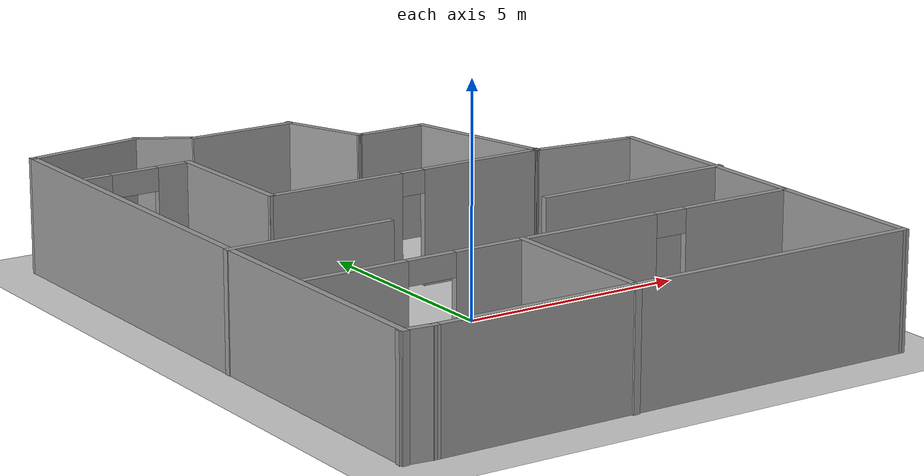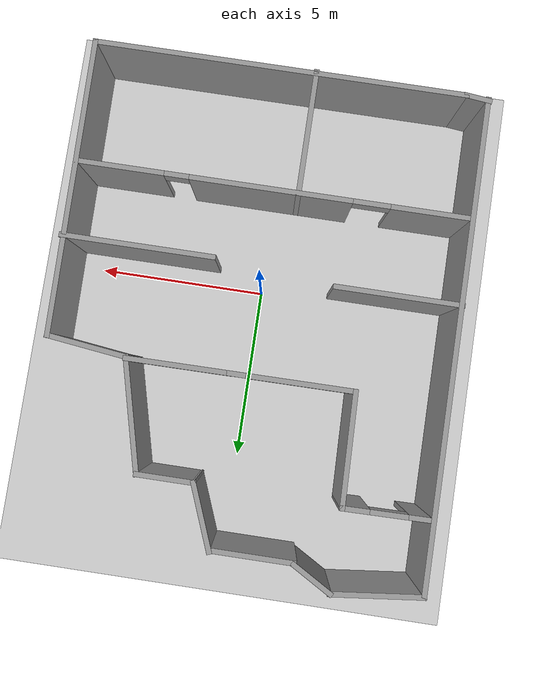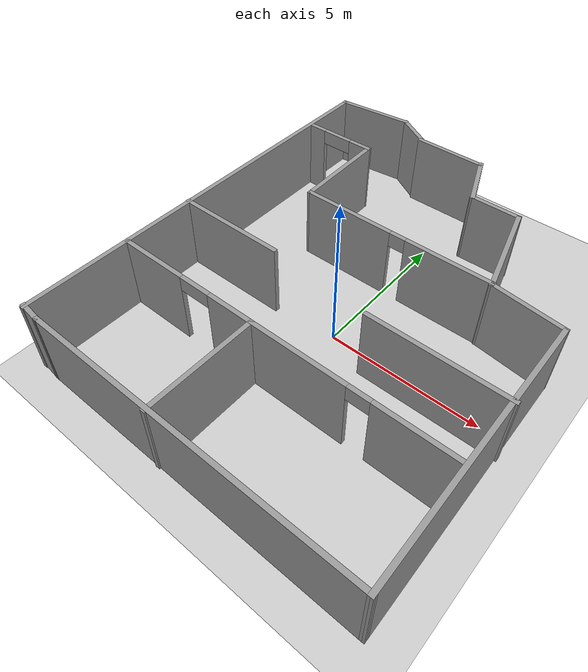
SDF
<sdf version="1.6">
 <world name="default">
  <light name="sun" type="directional">
   <pose>0 0 10 0 -0 0</pose>
   <diffuse>0.8 0.8 0.8 1</diffuse>
   <specular>0.2 0.2 0.2 1</specular>
   <attenuation>
    <range>1000</range>
    <constant>0.9</constant>
    <linear>0.01</linear>
    <quadratic>0.001</quadratic>
   </attenuation>
   <direction>-0.5 0.1 -0.9</direction>
  </light>
  <model name="ground_plane">
   <static>1</static>
   <link name="link">
    <collision name="collision">
     <geometry><plane><normal>0 0 1</normal><size>100 100</size></plane></geometry>
     <surface>
      <contact><collide_bitmask>65535</collide_bitmask></contact>
      <friction><ode><mu>100</mu><mu2>50</mu2></ode></friction>
     </surface>
    </collision>
    <visual name="visual">
     <cast_shadows>0</cast_shadows>
     <geometry><plane><normal>0 0 1</normal><size>100 100</size></plane></geometry>
     <material>
      <script><uri>file://media/materials/scripts/gazebo.material</uri><name>Gazebo/Grey</name></script>
     </material>
    </visual>
   </link>
  </model>
  <gravity>0 0 -9.8</gravity>
  <magnetic_field>6e-06 2.3e-05 -4.2e-05</magnetic_field>
  <atmosphere type="adiabatic"/>
  <physics name="default_physics" default="0" type="ode">
   <max_step_size>0.001</max_step_size>
   <real_time_factor>1</real_time_factor>
   <real_time_update_rate>1000</real_time_update_rate>
  </physics>
  <scene><ambient>0.4 0.4 0.4 1</ambient><background>0.7 0.7 0.7 1</background><shadows>1</shadows></scene>
  <spherical_coordinates>
   <surface_model>EARTH_WGS84</surface_model>
   <latitude_deg>0</latitude_deg>
   <longitude_deg>0</longitude_deg>
   <elevation>0</elevation>
   <heading_deg>0</heading_deg>
  </spherical_coordinates>
  <model name="1world">
   <pose>0.023806 0.914911 0 0 -0 0</pose>
   <link name="Wall_22">
    <pose>0.144752 1.70123 0 0 -0 0.004067</pose>
    <visual name="Wall_22_Visual_0">
     <pose>-1.74012 0 1.25 0 -0 0</pose>
     <geometry><box><size>3.17376 0.15 2.5</size></box></geometry>
     <material>
      <script><uri>file://media/materials/scripts/gazebo.material</uri><name>Gazebo/Grey</name></script>
      <ambient>1 1 1 1</ambient>
     </material>
     <meta><layer>0</layer></meta>
    </visual>
    <collision name="Wall_22_Collision_0">
     <geometry><box><size>3.17376 0.15 2.5</size></box></geometry>
     <pose>-1.74012 0 1.25 0 -0 0</pose>
    </collision>
    <visual name="Wall_22_Visual_1">
     <pose>1.85688 0 1.25 0 -0 0</pose>
     <geometry><box><size>2.94023 0.15 2.5</size></box></geometry>
     <material>
      <script><uri>file://media/materials/scripts/gazebo.material</uri><name>Gazebo/Grey</name></script>
      <ambient>1 1 1 1</ambient>
     </material>
     <meta><layer>0</layer></meta>
    </visual>
    <collision name="Wall_22_Collision_1">
     <geometry><box><size>2.94023 0.15 2.5</size></box></geometry>
     <pose>1.85688 0 1.25 0 -0 0</pose>
    </collision>
    <visual name="Wall_22_Visual_2">
     <pose>0.116765 0 2.25 0 -0 0</pose>
     <geometry><box><size>0.54 0.15 0.5</size></box></geometry>
     <material>
      <script><uri>file://media/materials/scripts/gazebo.material</uri><name>Gazebo/Grey</name></script>
      <ambient>1 1 1 1</ambient>
     </material>
     <meta><layer>0</layer></meta>
    </visual>
    <collision name="Wall_22_Collision_2">
     <geometry><box><size>0.54 0.15 0.5</size></box></geometry>
     <pose>0.116765 0 2.25 0 -0 0</pose>
    </collision>
   </link>
   <link name="Wall_26">
    <collision name="Wall_26_Collision">
     <geometry><box><size>3.40414 0.15 2.5</size></box></geometry>
     <pose>0 0 1.25 0 -0 0</pose>
    </collision>
    <visual name="Wall_26_Visual">
     <pose>0 0 1.25 0 -0 0</pose>
     <geometry><box><size>3.40414 0.15 2.5</size></box></geometry>
     <material>
      <script><uri>file://media/materials/scripts/gazebo.material</uri><name>Gazebo/Grey</name></script>
      <ambient>1 1 1 1</ambient>
     </material>
     <meta><layer>0</layer></meta>
    </visual>
    <pose>2.98717 3.25396 0 0 -0 1.82525</pose>
   </link>
   <link name="Wall_30">
    <collision name="Wall_30_Collision">
     <geometry><box><size>11 0.15 2.5</size></box></geometry>
     <pose>0 0 1.25 0 -0 0</pose>
    </collision>
    <visual name="Wall_30_Visual">
     <pose>0 0 1.25 0 -0 0</pose>
     <geometry><box><size>11 0.15 2.5</size></box></geometry>
     <material>
      <script><uri>file://media/materials/scripts/gazebo.material</uri><name>Gazebo/Grey</name></script>
      <ambient>1 1 1 1</ambient>
     </material>
     <meta><layer>0</layer></meta>
    </visual>
    <pose>0.338502 -7.20601 0 0 -0 3.14159</pose>
   </link>
   <link name="Wall_31">
    <collision name="Wall_31_Collision">
     <geometry><box><size>0.82404 0.15 2.5</size></box></geometry>
     <pose>0 0 1.25 0 -0 0</pose>
    </collision>
    <visual name="Wall_31_Visual">
     <pose>0 0 1.25 0 -0 0</pose>
     <geometry><box><size>0.82404 0.15 2.5</size></box></geometry>
     <material>
      <script><uri>file://media/materials/scripts/gazebo.material</uri><name>Gazebo/Grey</name></script>
      <ambient>1 1 1 1</ambient>
     </material>
     <meta><layer>0</layer></meta>
    </visual>
    <pose>-5.42168 -7.17084 0 0 -0 3.03702</pose>
   </link>
   <link name="Wall_32">
    <collision name="Wall_32_Collision">
     <geometry><box><size>14.25 0.15 2.5</size></box></geometry>
     <pose>0 0 1.25 0 -0 0</pose>
    </collision>
    <visual name="Wall_32_Visual">
     <pose>0 0 1.25 0 -0 0</pose>
     <geometry><box><size>14.25 0.15 2.5</size></box></geometry>
     <material>
      <script><uri>file://media/materials/scripts/gazebo.material</uri><name>Gazebo/Grey</name></script>
      <ambient>1 1 1 1</ambient>
     </material>
     <meta><layer>0</layer></meta>
    </visual>
    <pose>-5.72168 -0.120835 0 0 -0 1.5708</pose>
   </link>
   <link name="Wall_35">
    <pose>0.010281 -3.64927 0 0 -0 0</pose>
    <visual name="Wall_35_Visual_0">
     <pose>-4.56273 0 1.25 0 -0 0</pose>
     <geometry><box><size>2.37454 0.15 2.5</size></box></geometry>
     <material>
      <script><uri>file://media/materials/scripts/gazebo.material</uri><name>Gazebo/Grey</name></script>
      <ambient>1 1 1 1</ambient>
     </material>
     <meta><layer>0</layer></meta>
    </visual>
    <collision name="Wall_35_Collision_0">
     <geometry><box><size>2.37454 0.15 2.5</size></box></geometry>
     <pose>-4.56273 0 1.25 0 -0 0</pose>
    </collision>
    <visual name="Wall_35_Visual_1">
     <pose>0.074158 0 1.25 0 -0 0</pose>
     <geometry><box><size>4.73924 0.15 2.5</size></box></geometry>
     <material>
      <script><uri>file://media/materials/scripts/gazebo.material</uri><name>Gazebo/Grey</name></script>
      <ambient>1 1 1 1</ambient>
     </material>
     <meta><layer>0</layer></meta>
    </visual>
    <collision name="Wall_35_Collision_1">
     <geometry><box><size>4.73924 0.15 2.5</size></box></geometry>
     <pose>0.074158 0 1.25 0 -0 0</pose>
    </collision>
    <visual name="Wall_35_Visual_2">
     <pose>4.45689 0 1.25 0 -0 0</pose>
     <geometry><box><size>2.58622 0.15 2.5</size></box></geometry>
     <material>
      <script><uri>file://media/materials/scripts/gazebo.material</uri><name>Gazebo/Grey</name></script>
      <ambient>1 1 1 1</ambient>
     </material>
     <meta><layer>0</layer></meta>
    </visual>
    <collision name="Wall_35_Collision_2">
     <geometry><box><size>2.58622 0.15 2.5</size></box></geometry>
     <pose>4.45689 0 1.25 0 -0 0</pose>
    </collision>
    <visual name="Wall_35_Visual_3">
     <pose>-2.83546 0 2.25 0 -0 0</pose>
     <geometry><box><size>1.08 0.15 0.5</size></box></geometry>
     <material>
      <script><uri>file://media/materials/scripts/gazebo.material</uri><name>Gazebo/Grey</name></script>
      <ambient>1 1 1 1</ambient>
     </material>
     <meta><layer>0</layer></meta>
    </visual>
    <collision name="Wall_35_Collision_3">
     <geometry><box><size>1.08 0.15 0.5</size></box></geometry>
     <pose>-2.83546 0 2.25 0 -0 0</pose>
    </collision>
    <visual name="Wall_35_Visual_4">
     <pose>2.80378 0 2.25 0 -0 0</pose>
     <geometry><box><size>0.72 0.15 0.5</size></box></geometry>
     <material>
      <script><uri>file://media/materials/scripts/gazebo.material</uri><name>Gazebo/Grey</name></script>
      <ambient>1 1 1 1</ambient>
     </material>
     <meta><layer>0</layer></meta>
    </visual>
    <collision name="Wall_35_Collision_4">
     <geometry><box><size>0.72 0.15 0.5</size></box></geometry>
     <pose>2.80378 0 2.25 0 -0 0</pose>
    </collision>
   </link>
   <link name="Wall_37">
    <collision name="Wall_37_Collision">
     <geometry><box><size>3.75 0.15 2.5</size></box></geometry>
     <pose>0 0 1.25 0 -0 0</pose>
    </collision>
    <visual name="Wall_37_Visual">
     <pose>0 0 1.25 0 -0 0</pose>
     <geometry><box><size>3.75 0.15 2.5</size></box></geometry>
     <material>
      <script><uri>file://media/materials/scripts/gazebo.material</uri><name>Gazebo/Grey</name></script>
      <ambient>1 1 1 1</ambient>
     </material>
     <meta><layer>0</layer></meta>
    </visual>
    <pose>-0.710659 -5.4488 0 0 -0 -1.5708</pose>
   </link>
   <link name="Wall_39">
    <collision name="Wall_39_Collision">
     <geometry><box><size>3.75 0.15 2.5</size></box></geometry>
     <pose>0 0 1.25 0 -0 0</pose>
    </collision>
    <visual name="Wall_39_Visual">
     <pose>0 0 1.25 0 -0 0</pose>
     <geometry><box><size>3.75 0.15 2.5</size></box></geometry>
     <material>
      <script><uri>file://media/materials/scripts/gazebo.material</uri><name>Gazebo/Grey</name></script>
      <ambient>1 1 1 1</ambient>
     </material>
     <meta><layer>0</layer></meta>
    </visual>
    <pose>-3.94122 -1.15111 0 0 -0 0</pose>
   </link>
   <link name="Wall_41">
    <collision name="Wall_41_Collision">
     <geometry><box><size>4.5 0.15 2.5</size></box></geometry>
     <pose>0 0 1.25 0 -0 0</pose>
    </collision>
    <visual name="Wall_41_Visual">
     <pose>0 0 1.25 0 -0 0</pose>
     <geometry><box><size>4.5 0.15 2.5</size></box></geometry>
     <material>
      <script><uri>file://media/materials/scripts/gazebo.material</uri><name>Gazebo/Grey</name></script>
      <ambient>1 1 1 1</ambient>
     </material>
     <meta><layer>0</layer></meta>
    </visual>
    <pose>3.58723 -1.46772 0 0 -0 3.14159</pose>
   </link>
   <link name="Wall_47">
    <collision name="Wall_47_Collision">
     <geometry><box><size>1.40684 0.15 2.5</size></box></geometry>
     <pose>0 0 1.25 0 -0 0</pose>
    </collision>
    <visual name="Wall_47_Visual">
     <pose>0 0 1.25 0 -0 0</pose>
     <geometry><box><size>1.40684 0.15 2.5</size></box></geometry>
     <material>
      <script><uri>file://media/materials/scripts/gazebo.material</uri><name>Gazebo/Grey</name></script>
      <ambient>1 1 1 1</ambient>
     </material>
     <meta><layer>0</layer></meta>
    </visual>
    <pose>-2.6279 6.90904 0 0 -0 -0.520274</pose>
   </link>
   <link name="Wall_48">
    <collision name="Wall_48_Collision">
     <geometry><box><size>2.5 0.15 2.5</size></box></geometry>
     <pose>0 0 1.25 0 -0 0</pose>
    </collision>
    <visual name="Wall_48_Visual">
     <pose>0 0 1.25 0 -0 0</pose>
     <geometry><box><size>2.5 0.15 2.5</size></box></geometry>
     <material>
      <script><uri>file://media/materials/scripts/gazebo.material</uri><name>Gazebo/Grey</name></script>
      <ambient>1 1 1 1</ambient>
     </material>
     <meta><layer>0</layer></meta>
    </visual>
    <pose>-0.907631 6.56146 0 0 -0 0</pose>
   </link>
   <link name="Wall_57">
    <collision name="Wall_57_Collision">
     <geometry><box><size>1.75 0.15 2.5</size></box></geometry>
     <pose>0 0 1.25 0 -0 0</pose>
    </collision>
    <visual name="Wall_57_Visual">
     <pose>0 0 1.25 0 -0 0</pose>
     <geometry><box><size>1.75 0.15 2.5</size></box></geometry>
     <material>
      <script><uri>file://media/materials/scripts/gazebo.material</uri><name>Gazebo/Grey</name></script>
      <ambient>1 1 1 1</ambient>
     </material>
     <meta><layer>0</layer></meta>
    </visual>
    <pose>1.77761 4.82864 0 0 -0 3.14159</pose>
   </link>
   <link name="Wall_59">
    <pose>-4.40909 4.88141 0 0 -0 0.014325</pose>
    <visual name="Wall_59_Visual_0">
     <pose>-0.959239 0 1.25 0 -0 0</pose>
     <geometry><box><size>0.687311 0.15 2.5</size></box></geometry>
     <material>
      <script><uri>file://media/materials/scripts/gazebo.material</uri><name>Gazebo/Grey</name></script>
      <ambient>1 1 1 1</ambient>
     </material>
     <meta><layer>0</layer></meta>
    </visual>
    <collision name="Wall_59_Collision_0">
     <geometry><box><size>0.687311 0.15 2.5</size></box></geometry>
     <pose>-0.959239 0 1.25 0 -0 0</pose>
    </collision>
    <visual name="Wall_59_Visual_1">
     <pose>0.883655 0 1.25 0 -0 0</pose>
     <geometry><box><size>0.838478 0.15 2.5</size></box></geometry>
     <material>
      <script><uri>file://media/materials/scripts/gazebo.material</uri><name>Gazebo/Grey</name></script>
      <ambient>1 1 1 1</ambient>
     </material>
     <meta><layer>0</layer></meta>
    </visual>
    <collision name="Wall_59_Collision_1">
     <geometry><box><size>0.838478 0.15 2.5</size></box></geometry>
     <pose>0.883655 0 1.25 0 -0 0</pose>
    </collision>
    <visual name="Wall_59_Visual_2">
     <pose>-0.075584 0 2.25 0 -0 0</pose>
     <geometry><box><size>1.08 0.15 0.5</size></box></geometry>
     <material>
      <script><uri>file://media/materials/scripts/gazebo.material</uri><name>Gazebo/Grey</name></script>
      <ambient>1 1 1 1</ambient>
     </material>
     <meta><layer>0</layer></meta>
    </visual>
    <collision name="Wall_59_Collision_2">
     <geometry><box><size>1.08 0.15 0.5</size></box></geometry>
     <pose>-0.075584 0 2.25 0 -0 0</pose>
    </collision>
   </link>
   <link name="Wall_61">
    <collision name="Wall_61_Collision">
     <geometry><box><size>2.44393 0.15 2.5</size></box></geometry>
     <pose>0 0 1.25 0 -0 0</pose>
    </collision>
    <visual name="Wall_61_Visual">
     <pose>0 0 1.25 0 -0 0</pose>
     <geometry><box><size>2.44393 0.15 2.5</size></box></geometry>
     <material>
      <script><uri>file://media/materials/scripts/gazebo.material</uri><name>Gazebo/Grey</name></script>
      <ambient>1 1 1 1</ambient>
     </material>
     <meta><layer>0</layer></meta>
    </visual>
    <pose>4.53555 1.54293 0 0 -0 -0.119161</pose>
   </link>
   <link name="Wall_63">
    <collision name="Wall_63_Collision">
     <geometry><box><size>8.76305 0.15 2.5</size></box></geometry>
     <pose>0 0 1.25 0 -0 0</pose>
    </collision>
    <visual name="Wall_63_Visual">
     <pose>0 0 1.25 0 -0 0</pose>
     <geometry><box><size>8.76305 0.15 2.5</size></box></geometry>
     <material>
      <script><uri>file://media/materials/scripts/gazebo.material</uri><name>Gazebo/Grey</name></script>
      <ambient>1 1 1 1</ambient>
     </material>
     <meta><layer>0</layer></meta>
    </visual>
    <pose>5.71894 -2.89972 0 0 -0 -1.56045</pose>
   </link>
   <link name="Wall_65">
    <collision name="Wall_65_Collision">
     <geometry><box><size>2.05532 0.15 2.5</size></box></geometry>
     <pose>0 0 1.25 0 -0 0</pose>
    </collision>
    <visual name="Wall_65_Visual">
     <pose>0 0 1.25 0 -0 0</pose>
     <geometry><box><size>2.05532 0.15 2.5</size></box></geometry>
     <material>
      <script><uri>file://media/materials/scripts/gazebo.material</uri><name>Gazebo/Grey</name></script>
      <ambient>1 1 1 1</ambient>
     </material>
     <meta><layer>0</layer></meta>
    </visual>
    <pose>0.62249 5.71264 0 0 -0 1.95278</pose>
   </link>
   <link name="Wall_67">
    <collision name="Wall_67_Collision">
     <geometry><box><size>3.36185 0.15 2.5</size></box></geometry>
     <pose>0 0 1.25 0 -0 0</pose>
    </collision>
    <visual name="Wall_67_Visual">
     <pose>0 0 1.25 0 -0 0</pose>
     <geometry><box><size>3.36185 0.15 2.5</size></box></geometry>
     <material>
      <script><uri>file://media/materials/scripts/gazebo.material</uri><name>Gazebo/Grey</name></script>
      <ambient>1 1 1 1</ambient>
     </material>
     <meta><layer>0</layer></meta>
    </visual>
    <pose>-3.14427 3.2935 0 0 -0 -1.54772</pose>
   </link>
   <link name="Wall_69">
    <collision name="Wall_69_Collision">
     <geometry><box><size>2.71521 0.15 2.5</size></box></geometry>
     <pose>0 0 1.25 0 -0 0</pose>
    </collision>
    <visual name="Wall_69_Visual">
     <pose>0 0 1.25 0 -0 0</pose>
     <geometry><box><size>2.71521 0.15 2.5</size></box></geometry>
     <material>
      <script><uri>file://media/materials/scripts/gazebo.material</uri><name>Gazebo/Grey</name></script>
      <ambient>1 1 1 1</ambient>
     </material>
     <meta><layer>0</layer></meta>
    </visual>
    <pose>-4.44742 7.0753 0 0 -0 -3.02741</pose>
   </link>
   <static>1</static>
  </model>
 </world>
</sdf>
